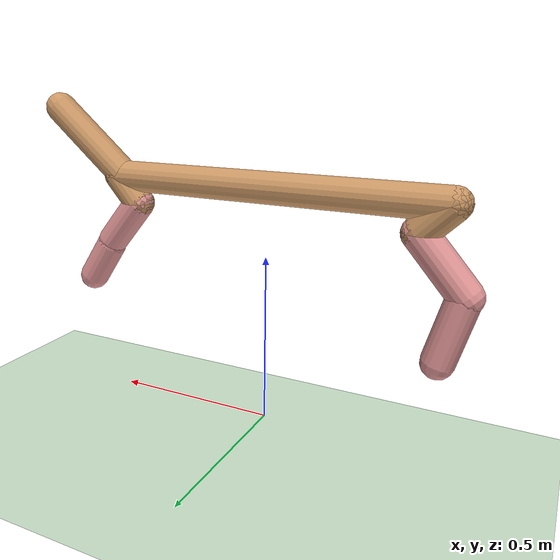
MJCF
<mujoco model="cheetah">
  <compiler angle="radian" autolimits="true"/>
  <option timestep="0.01"/>
  <size nstack="300000" nuser_geom="1"/>
  <default class="main">
    <joint limited="true" solimplimit="0 0.8 0.03 0.5 2" stiffness="8" armature="0.1" damping="0.01"/>
    <geom conaffinity="0" friction="0.4 0.1 0.1" solimp="0 0.8 0.01 0.5 2" rgba="0.8 0.6 0.4 1"/>
    <general ctrllimited="true" ctrlrange="-1 1"/>
  </default>
  <asset>
    <texture type="skybox" builtin="gradient" rgb1="1 1 1" rgb2="0 0 0" width="100" height="600"/>
    <texture type="cube" name="texgeom" builtin="flat" mark="cross" rgb1="0.8 0.6 0.4" rgb2="0.8 0.6 0.4" markrgb="1 1 1" width="127" height="762"/>
    <texture type="2d" name="texplane" builtin="checker" rgb1="0 0 0" rgb2="0.8 0.8 0.8" width="100" height="100"/>
    <material name="MatPlane" texture="texplane" texrepeat="60 60" specular="1" shininess="1" reflectance="0.5"/>
    <material name="geom" texture="texgeom" texuniform="true"/>
  </asset>
  <worldbody>
    <geom name="floor" size="40 40 40" type="plane" conaffinity="1" material="MatPlane" rgba="0.8 0.9 0.8 1"/>
    <light pos="0 0 1.3" dir="0 0 -1" directional="true" cutoff="100" exponent="1" diffuse="1 1 1" specular="0.1 0.1 0.1"/>
    <body name="torso" pos="0 0 0.7" gravcomp="0">
      <joint name="rootx" pos="0 0 0" axis="1 0 0" limited="false" type="slide" stiffness="0" armature="0" damping="0"/>
      <joint name="rootz" pos="0 0 0" axis="0 0 1" limited="false" type="slide" stiffness="0" armature="0" damping="0"/>
      <joint name="rooty" pos="0 0 0" axis="0 1 0" limited="false" stiffness="0" armature="0" damping="0"/>
      <geom name="torso" size="0.046 0.5" quat="0.707107 0 -0.707107 0" type="capsule"/>
      <geom name="head" size="0.046 0.15" pos="0.6 0 0.1" quat="0.90687 0 0.42141 0" type="capsule"/>
      <camera name="track" pos="0 -3 0.3" quat="0.707107 0.707107 0 0" mode="trackcom"/>
      <body name="bthigh" pos="-0.5 0 0" gravcomp="0">
        <joint name="bthigh" pos="0 0 0" axis="0 1 0" stiffness="240" range="-0.52 1.05" damping="6"/>
        <geom name="bthigh" size="0.046 0.0565685" pos="0.04 0 -0.04" quat="0.92388 0 -0.382683 0" type="capsule"/>
        <body name="bshin" pos="0.08 0 -0.08" gravcomp="0">
          <joint name="bshin" pos="0 0 0" axis="0 1 0" stiffness="180" range="-0.785 0.785" damping="4.5"/>
          <geom name="bshin" size="0.046 0.0992472" pos="-0.065 0 -0.075" quat="0.936934 0 0.349507 0" type="capsule" rgba="0.9 0.6 0.6 1"/>
          <body name="bfoot" pos="-0.13 0 -0.15" gravcomp="0">
            <joint name="bfoot" pos="0 0 0" axis="0 1 0" stiffness="120" range="-0.4 0.785" damping="3"/>
            <geom name="bfoot" size="0.046 0.094" pos="0.03 0 -0.097" quat="0.990901 0 -0.13459 0" type="capsule" rgba="0.9 0.6 0.6 1"/>
          </body>
        </body>
      </body>
      <body name="fthigh" pos="0.5 0 0" gravcomp="0">
        <joint name="fthigh" pos="0 0 0" axis="0 1 0" stiffness="180" range="-1 0.7" damping="4.5"/>
        <geom name="fthigh" size="0.046 0.0531507" pos="-0.035 0 -0.04" quat="0.936103 0 0.351727 0" type="capsule"/>
        <body name="fshin" pos="-0.07 0 -0.08" gravcomp="0">
          <joint name="fshin" pos="0 0 0" axis="0 1 0" stiffness="120" range="-1.2 0.87" damping="3"/>
          <geom name="fshin" size="0.046 0.0851469" pos="0.055 0 -0.065" quat="0.938985 0 -0.343958 0" type="capsule" rgba="0.9 0.6 0.6 1"/>
          <body name="ffoot" pos="0.11 0 -0.13" gravcomp="0">
            <joint name="ffoot" pos="0 0 0" axis="0 1 0" stiffness="60" range="-0.5 0.5" damping="1.5"/>
            <geom name="ffoot" size="0.046 0.07" pos="0.045 0 -0.07" quat="0.955336 0 -0.29552 0" type="capsule" rgba="0.9 0.6 0.6 1"/>
          </body>
        </body>
      </body>
    </body>
  </worldbody>
  <actuator>
    <general name="bthigh" joint="bthigh" gear="120 0 0 0 0 0" actdim="0"/>
    <general name="bshin" joint="bshin" gear="90 0 0 0 0 0" actdim="0"/>
    <general name="bfoot" joint="bfoot" gear="60 0 0 0 0 0" actdim="0"/>
    <general name="fthigh" joint="fthigh" gear="120 0 0 0 0 0" actdim="0"/>
    <general name="fshin" joint="fshin" gear="60 0 0 0 0 0" actdim="0"/>
    <general name="ffoot" joint="ffoot" gear="30 0 0 0 0 0" actdim="0"/>
  </actuator>
</mujoco>
